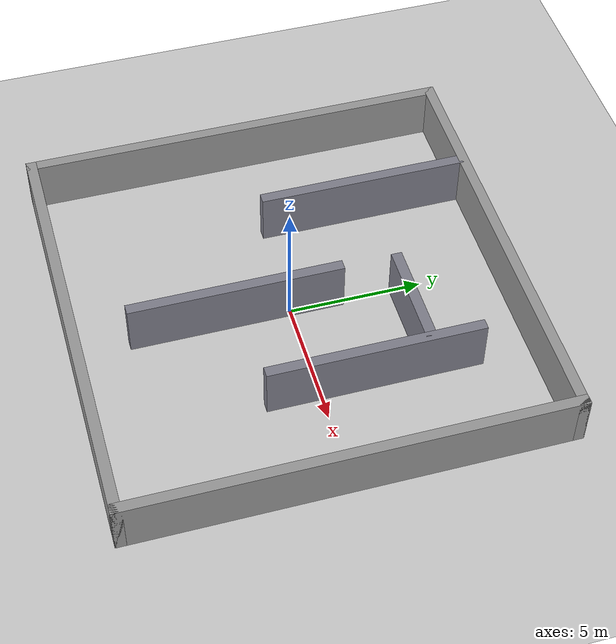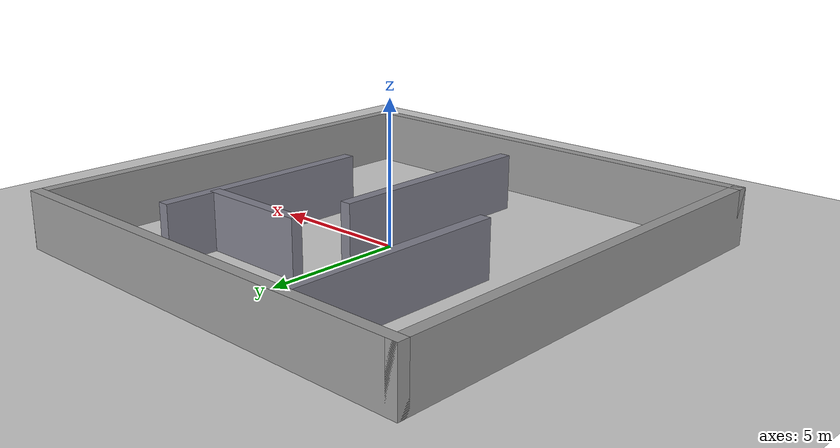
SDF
<?xml version="1.0" ?>
<sdf version="1.8">
  <world name="maze_world">
    <physics name="1ms" type="ignored">
      <max_step_size>0.002</max_step_size>
      <real_time_factor>1.0</real_time_factor>
    </physics>

    <plugin filename="gz-sim-physics-system" name="gz::sim::systems::Physics"/>
    <plugin filename="gz-sim-user-commands-system" name="gz::sim::systems::UserCommands"/>
    <plugin filename="gz-sim-scene-broadcaster-system" name="gz::sim::systems::SceneBroadcaster"/>
    <plugin filename="gz-sim-sensors-system" name="gz::sim::systems::Sensors">
      <render_engine>ogre2</render_engine>
    </plugin>
    <plugin filename="gz-sim-imu-system" name="gz::sim::systems::Imu"/>

    <light type="directional" name="sun">
      <cast_shadows>true</cast_shadows>
      <pose>0 0 10 0 0 0</pose>
      <diffuse>0.8 0.8 0.8 1</diffuse>
      <direction>-0.5 0.3 -0.9</direction>
    </light>

    <model name="ground_plane">
      <static>true</static>
      <link name="link">
        <collision name="collision">
          <geometry><plane><normal>0 0 1</normal><size>25 25</size></plane></geometry>
        </collision>
        <visual name="visual">
          <geometry><plane><normal>0 0 1</normal><size>25 25</size></plane></geometry>
          <material><diffuse>0.8 0.8 0.8 1</diffuse></material>
        </visual>
      </link>
    </model>

    <!-- Outer Walls (16m x 16m) -->
    <model name="maze_walls">
      <static>true</static>
      <link name="north"><pose>0 8 1 0 0 0</pose><collision name="c"><geometry><box><size>16.4 0.4 2</size></box></geometry></collision><visual name="v"><geometry><box><size>16.4 0.4 2</size></box></geometry><material><diffuse>0.6 0.6 0.6 1</diffuse></material></visual></link>
      <link name="south"><pose>0 -8 1 0 0 0</pose><collision name="c"><geometry><box><size>16.4 0.4 2</size></box></geometry></collision><visual name="v"><geometry><box><size>16.4 0.4 2</size></box></geometry><material><diffuse>0.6 0.6 0.6 1</diffuse></material></visual></link>
      <link name="east"><pose>8 0 1 0 0 0</pose><collision name="c"><geometry><box><size>0.4 16.4 2</size></box></geometry></collision><visual name="v"><geometry><box><size>0.4 16.4 2</size></box></geometry><material><diffuse>0.6 0.6 0.6 1</diffuse></material></visual></link>
      <link name="west"><pose>-8 0 1 0 0 0</pose><collision name="c"><geometry><box><size>0.4 16.4 2</size></box></geometry></collision><visual name="v"><geometry><box><size>0.4 16.4 2</size></box></geometry><material><diffuse>0.6 0.6 0.6 1</diffuse></material></visual></link>

      <!-- Internal Maze Partitions -->
      <link name="w1"><pose>-4 4 1 0 0 0</pose><collision name="c"><geometry><box><size>0.4 8 2</size></box></geometry></collision><visual name="v"><geometry><box><size>0.4 8 2</size></box></geometry><material><diffuse>0.5 0.5 0.55 1</diffuse></material></visual></link>
      <link name="w2"><pose>0 -2 1 0 0 0</pose><collision name="c"><geometry><box><size>0.4 8 2</size></box></geometry></collision><visual name="v"><geometry><box><size>0.4 8 2</size></box></geometry><material><diffuse>0.5 0.5 0.55 1</diffuse></material></visual></link>
      <link name="w3"><pose>4 2 1 0 0 0</pose><collision name="c"><geometry><box><size>0.4 8 2</size></box></geometry></collision><visual name="v"><geometry><box><size>0.4 8 2</size></box></geometry><material><diffuse>0.5 0.5 0.55 1</diffuse></material></visual></link>
      <link name="w4"><pose>2 4 1 0 0 0</pose><collision name="c"><geometry><box><size>4 0.4 2</size></box></geometry></collision><visual name="v"><geometry><box><size>4 0.4 2</size></box></geometry><material><diffuse>0.5 0.5 0.55 1</diffuse></material></visual></link>
    </model>
  </world>
</sdf>
